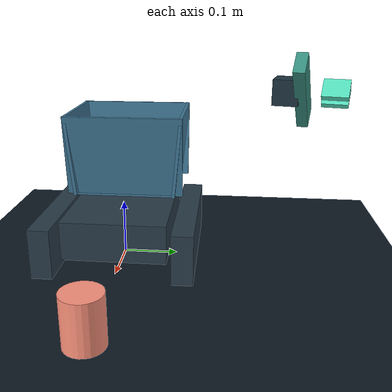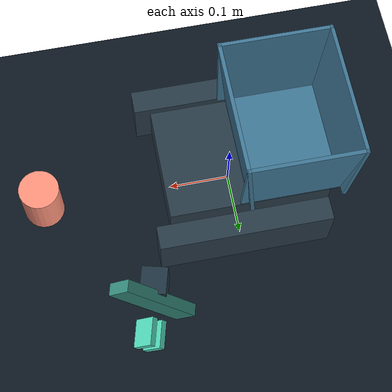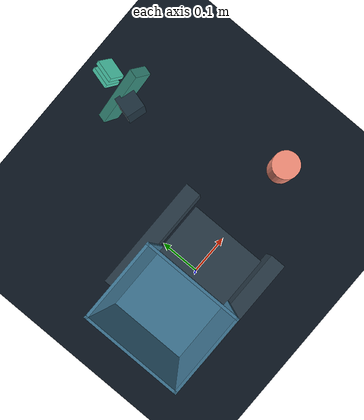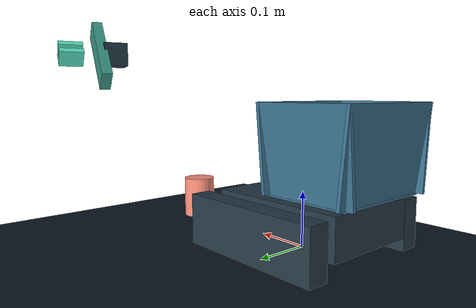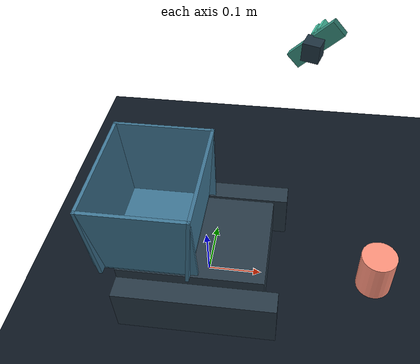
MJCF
<mujoco model="MOSS mobile manipulation">
  <compiler angle="radian" autolimits="true" />
  <option timestep="0.002" integrator="implicitfast" cone="elliptic" iterations="80" />
  <default>
    <joint damping="0.15" armature="0.015" />
    <geom friction="0.9 0.005 0.0001" solref="0.008 1" solimp="0.95 0.99 0.001" condim="4" />
  </default>
  <worldbody>
    <geom name="ground" type="plane" size="2 2 .05" rgba=".05 .09 .13 1" />
    <body name="rover">
      <joint name="base_x" type="slide" axis="1 0 0" range="0 .8" damping="40" />
      <geom name="hull" type="box" pos="-0.015 0 0.065" size="0.13 0.093 0.035" rgba=".16 .23 .28 1" />
      <geom name="track_-1" type="box" pos="0 -0.122 0.049" size="0.14 0.019 0.045" rgba=".16 .23 .28 1" />
      <geom name="track_1" type="box" pos="0 0.122 0.049" size="0.14 0.019 0.045" rgba=".16 .23 .28 1" />
      <geom name="bin_floor" type="box" pos="-0.087 0 0.1102" size="0.077 0.096 0.002" rgba=".25 .47 .59 1" />
      <geom name="bin_x-1" type="box" pos="-0.168 0 0.186" size="0.003 0.11 0.075" rgba=".25 .47 .59 1" euler="0 -0.096 0" />
      <geom name="bin_y-1" type="box" pos="-0.087 -0.1 0.186" size="0.09 0.003 0.075" rgba=".25 .47 .59 1" euler="0.092 0 0" />
      <geom name="bin_x1" type="box" pos="-0.006 0 0.186" size="0.003 0.11 0.075" rgba=".25 .47 .59 1" euler="0 0.096 0" />
      <geom name="bin_y1" type="box" pos="-0.087 0.1 0.186" size="0.09 0.003 0.075" rgba=".25 .47 .59 1" euler="-0.092 0 0" />
      <body name="base_link" pos=".085 -.03 .1004" euler="0 0 1.308996939">
        <body name="shoulder_link" pos="0.0388353 -8.97657e-09 0.0624" quat="1.76036379e-12 1.3267949e-06 -1 -1.3267949e-06">
          <joint name="shoulder_pan" axis="0 0 1" range="-1.91986 1.91986" />
          <body name="upper_arm_link" pos="-0.0303992 -0.0182778 -0.0542" quat="0.499998163 -0.5 -0.5 -0.500001837">
            <joint name="shoulder_lift" axis="0 0 1" range="-1.74533 1.74533" />
            <body name="lower_arm_link" pos="-0.11257 -0.028 1.73763e-16" quat="0.707105483 -4.37667256e-16 1.80556438e-16 0.70710808">
              <joint name="elbow_flex" axis="0 0 1" range="-1.69 1.69" />
              <body name="wrist_link" pos="-0.1349 0.0052 3.62355e-17" quat="0.707105483 1.72955356e-15 -1.11624123e-15 -0.70710808">
                <joint name="wrist_flex" axis="0 0 1" range="-1.65806 1.65806" />
                <body name="gripper_link" pos="5.55112e-17 -0.0611 0.0181" quat="0.0172100725 -0.0172081335 0.706898659 0.706896017">
                  <joint name="wrist_roll" axis="0 0 1" range="-2.74385 2.84121" />
                  <body name="gripper_frame_link" pos="-0.0079 -0.000218121 -0.0981274" quat="1.3267949e-06 0 1 0">
                    <geom name="palm" type="box" pos="-0.0079 0.000218 -0.059" euler="0 0 0.722112186" size=".060 .017 .008" mass=".1" rgba=".21 .55 .49 1" contype="2" conaffinity="1" />
                    <geom name="gripper_mount" type="box" pos="-0.0079 0.000218 -0.08" size=".018 .017 .018" mass=".05" rgba=".12 .2 .25 1" contype="2" conaffinity="1" />
                    <site name="tcp" pos="-0.0079 0.000218 -0.014" size=".002" />
                    <body name="finger_left" pos="-0.00189670952 0.00550576923 0">
                      <joint name="finger_left" type="slide" axis="0.75041131 0.660971154 0" range="0 .041" damping="2" armature=".002" />
                      <geom name="pad_left" type="box" pos="0 0 -.014" euler="0 0 0.722112186" size=".004 .015 .018" mass=".025" friction="1.4 .01 .001" rgba=".32 .85 .72 1" contype="2" conaffinity="1" />
                    </body>
                    <body name="finger_right" pos="-0.0139032905 -0.00506976923 0">
                      <joint name="finger_right" type="slide" axis="-0.75041131 -0.660971154 -0" range="0 .041" damping="2" armature=".002" />
                      <geom name="pad_right" type="box" pos="0 0 -.014" euler="0 0 0.722112186" size=".004 .015 .018" mass=".025" friction="1.4 .01 .001" rgba=".32 .85 .72 1" contype="2" conaffinity="1" />
                    </body>
                  </body>
                  <inertial pos="0.000213627 0.000245138 -0.025187" mass="0.087" fullinertia="2.75087e-05 4.33657e-05 3.45059e-05 -3.35241e-07 -5.7352e-06 -5.17847e-08" />
                </body>
                <inertial pos="-0.000103312 -0.0386143 0.0281156" mass="0.079" fullinertia="3.68263e-05 2.5391e-05 2.1e-05 1.7893e-08 -5.28128e-08 3.6412e-06" />
                <geom name="wrist_link_proxy" type="capsule" fromto="0 0 0 5.55112e-17 -0.0611 0.0181" size=".013" contype="2" conaffinity="1" group="3" rgba=".95 .5 .4 .25" />
              </body>
              <inertial pos="-0.0980701 0.00324376 0.0182831" mass="0.104" fullinertia="2.87438e-05 0.000159844 0.00014529 7.41152e-06 1.26409e-06 -4.90188e-08" />
              <geom name="lower_arm_link_proxy" type="capsule" fromto="0 0 0 -0.1349 0.0052 3.62355e-17" size=".013" contype="2" conaffinity="1" group="3" rgba=".95 .5 .4 .25" />
            </body>
            <inertial pos="-0.0898471 -0.00838224 0.0184089" mass="0.103" fullinertia="4.08002e-05 0.000147318 0.000142487 -1.97819e-05 -4.03016e-08 8.97326e-09" />
            <geom name="upper_arm_link_proxy" type="capsule" fromto="0 0 0 -0.11257 -0.028 1.73763e-16" size=".013" contype="2" conaffinity="1" group="3" rgba=".95 .5 .4 .25" />
          </body>
          <inertial pos="-0.0307604 -1.66727e-05 -0.0252713" mass="0.100006" fullinertia="8.3759e-05 8.10403e-05 2.39783e-05 7.55525e-08 -1.16342e-06 1.54663e-07" />
          <geom name="shoulder_link_proxy" type="capsule" fromto="0 0 0 -0.0303992 -0.0182778 -0.0542" size=".013" contype="2" conaffinity="1" group="3" rgba=".95 .5 .4 .25" />
        </body>
        <inertial pos="0.0137179 -5.19711e-05 0.0334843" mass="0.147" fullinertia="0.000114686 0.000136117 0.000130364 -4.59787e-07 4.97151e-06 9.75275e-08" />
      </body>
    </body>
    <body name="litter" pos=".315 0 .026">
      <freejoint name="litter_free" />
      <geom name="can" type="cylinder" size=".033 .0575" mass=".018" rgba="1 .58 .49 1" contype="1" conaffinity="3" />
    </body>
  </worldbody>
  <actuator>
    <position name="shoulder_pan" joint="shoulder_pan" kp="70" kv="3" forcerange="-2.2 2.2" inheritrange="1" />
    <position name="shoulder_lift" joint="shoulder_lift" kp="70" kv="3" forcerange="-2.2 2.2" inheritrange="1" />
    <position name="elbow_flex" joint="elbow_flex" kp="70" kv="3" forcerange="-2.2 2.2" inheritrange="1" />
    <position name="wrist_flex" joint="wrist_flex" kp="70" kv="3" forcerange="-2.2 2.2" inheritrange="1" />
    <position name="wrist_roll" joint="wrist_roll" kp="70" kv="3" forcerange="-2.2 2.2" inheritrange="1" />
    <position name="finger_left" joint="finger_left" kp="700" kv="8" forcerange="-8 8" ctrlrange="0 .041" />
    <position name="finger_right" joint="finger_right" kp="700" kv="8" forcerange="-8 8" ctrlrange="0 .041" />
    <position name="base_x" joint="base_x" kp="3000" kv="300" ctrlrange="0 .8" forcerange="-200 200" />
  </actuator>
</mujoco>
